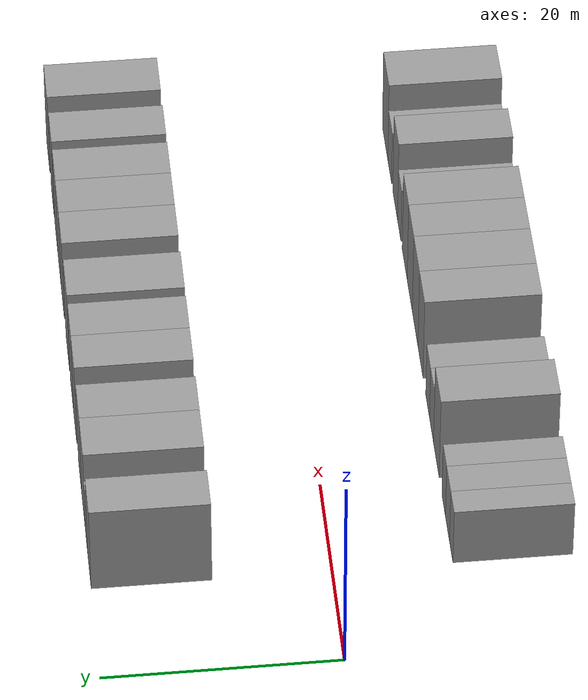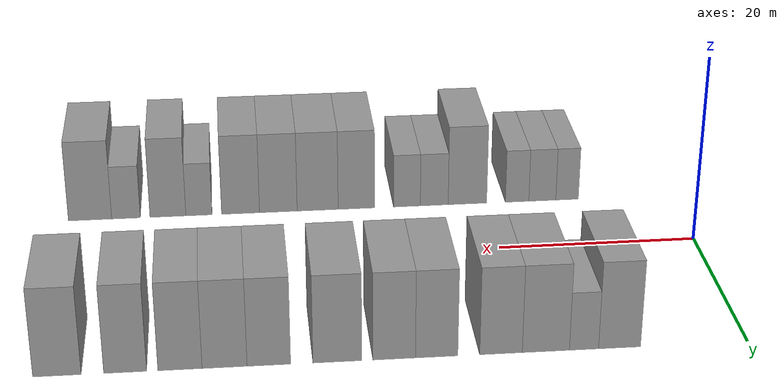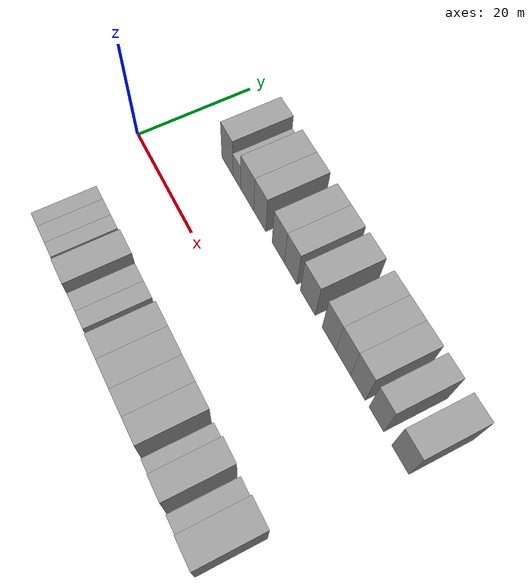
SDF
<sdf version="1.6">
 <world name="default">
  <model name="building_1">
   <static>1</static>
   <pose>11.9510 15.0000 0 0.000000 0.000000 1.570796</pose>
   <link name="link">
    <pose>0 0 4.50 0 0 0</pose>
    <collision name="collision"><geometry><box><size>10.0000 3.9020 9.0000</size></box></geometry></collision>
    <visual name="visual">
     <cast_shadows>0</cast_shadows>
     <geometry><box><size>10.0000 3.9020 9.0000</size></box></geometry>
     <material>
      <script>
       <uri>model://grey_wall/materials/scripts</uri>
       <uri>model://grey_wall/materials/textures</uri>
       <name>vrc/grey_wall</name>
      </script>
     </material>
    </visual>
   </link>
  </model>
  <model name="building_2">
   <static>1</static>
   <pose>15.2485 15.0000 0 0.000000 0.000000 1.570796</pose>
   <link name="link">
    <pose>0 0 3.00 0 0 0</pose>
    <collision name="collision"><geometry><box><size>10.0000 2.6931 6.0000</size></box></geometry></collision>
    <visual name="visual">
     <cast_shadows>0</cast_shadows>
     <geometry><box><size>10.0000 2.6931 6.0000</size></box></geometry>
     <material>
      <script>
       <uri>model://grey_wall/materials/scripts</uri>
       <uri>model://grey_wall/materials/textures</uri>
       <name>vrc/grey_wall</name>
      </script>
     </material>
    </visual>
   </link>
  </model>
  <model name="building_3">
   <static>1</static>
   <pose>18.7668 15.0000 0 0.000000 0.000000 1.570796</pose>
   <link name="link">
    <pose>0 0 4.50 0 0 0</pose>
    <collision name="collision"><geometry><box><size>10.0000 4.3433 9.0000</size></box></geometry></collision>
    <visual name="visual">
     <cast_shadows>0</cast_shadows>
     <geometry><box><size>10.0000 4.3433 9.0000</size></box></geometry>
     <material>
      <script>
       <uri>model://grey_wall/materials/scripts</uri>
       <uri>model://grey_wall/materials/textures</uri>
       <name>vrc/grey_wall</name>
      </script>
     </material>
    </visual>
   </link>
  </model>
  <model name="building_4">
   <static>1</static>
   <pose>22.8934 15.0000 0 0.000000 0.000000 1.570796</pose>
   <link name="link">
    <pose>0 0 4.50 0 0 0</pose>
    <collision name="collision"><geometry><box><size>10.0000 3.9101 9.0000</size></box></geometry></collision>
    <visual name="visual">
     <cast_shadows>0</cast_shadows>
     <geometry><box><size>10.0000 3.9101 9.0000</size></box></geometry>
     <material>
      <script>
       <uri>model://grey_wall/materials/scripts</uri>
       <uri>model://grey_wall/materials/textures</uri>
       <name>vrc/grey_wall</name>
      </script>
     </material>
    </visual>
   </link>
  </model>
  <model name="building_5">
   <static>1</static>
   <pose>28.7797 15.0000 0 0.000000 0.000000 1.570796</pose>
   <link name="link">
    <pose>0 0 4.50 0 0 0</pose>
    <collision name="collision"><geometry><box><size>10.0000 3.8624 9.0000</size></box></geometry></collision>
    <visual name="visual">
     <cast_shadows>0</cast_shadows>
     <geometry><box><size>10.0000 3.8624 9.0000</size></box></geometry>
     <material>
      <script>
       <uri>model://grey_wall/materials/scripts</uri>
       <uri>model://grey_wall/materials/textures</uri>
       <name>vrc/grey_wall</name>
      </script>
     </material>
    </visual>
   </link>
  </model>
  <model name="building_6">
   <static>1</static>
   <pose>32.6472 15.0000 0 0.000000 0.000000 1.570796</pose>
   <link name="link">
    <pose>0 0 4.50 0 0 0</pose>
    <collision name="collision"><geometry><box><size>10.0000 3.8726 9.0000</size></box></geometry></collision>
    <visual name="visual">
     <cast_shadows>0</cast_shadows>
     <geometry><box><size>10.0000 3.8726 9.0000</size></box></geometry>
     <material>
      <script>
       <uri>model://grey_wall/materials/scripts</uri>
       <uri>model://grey_wall/materials/textures</uri>
       <name>vrc/grey_wall</name>
      </script>
     </material>
    </visual>
   </link>
  </model>
  <model name="building_7">
   <static>1</static>
   <pose>37.7968 15.0000 0 0.000000 0.000000 1.570796</pose>
   <link name="link">
    <pose>0 0 4.50 0 0 0</pose>
    <collision name="collision"><geometry><box><size>10.0000 4.4267 9.0000</size></box></geometry></collision>
    <visual name="visual">
     <cast_shadows>0</cast_shadows>
     <geometry><box><size>10.0000 4.4267 9.0000</size></box></geometry>
     <material>
      <script>
       <uri>model://grey_wall/materials/scripts</uri>
       <uri>model://grey_wall/materials/textures</uri>
       <name>vrc/grey_wall</name>
      </script>
     </material>
    </visual>
   </link>
  </model>
  <model name="building_8">
   <static>1</static>
   <pose>43.9708 15.0000 0 0.000000 0.000000 1.570796</pose>
   <link name="link">
    <pose>0 0 4.50 0 0 0</pose>
    <collision name="collision"><geometry><box><size>10.0000 3.9212 9.0000</size></box></geometry></collision>
    <visual name="visual">
     <cast_shadows>0</cast_shadows>
     <geometry><box><size>10.0000 3.9212 9.0000</size></box></geometry>
     <material>
      <script>
       <uri>model://grey_wall/materials/scripts</uri>
       <uri>model://grey_wall/materials/textures</uri>
       <name>vrc/grey_wall</name>
      </script>
     </material>
    </visual>
   </link>
  </model>
  <model name="building_9">
   <static>1</static>
   <pose>47.9427 15.0000 0 0.000000 0.000000 1.570796</pose>
   <link name="link">
    <pose>0 0 4.50 0 0 0</pose>
    <collision name="collision"><geometry><box><size>10.0000 4.0226 9.0000</size></box></geometry></collision>
    <visual name="visual">
     <cast_shadows>0</cast_shadows>
     <geometry><box><size>10.0000 4.0226 9.0000</size></box></geometry>
     <material>
      <script>
       <uri>model://grey_wall/materials/scripts</uri>
       <uri>model://grey_wall/materials/textures</uri>
       <name>vrc/grey_wall</name>
      </script>
     </material>
    </visual>
   </link>
  </model>
  <model name="building_10">
   <static>1</static>
   <pose>51.9227 15.0000 0 0.000000 0.000000 1.570796</pose>
   <link name="link">
    <pose>0 0 4.50 0 0 0</pose>
    <collision name="collision"><geometry><box><size>10.0000 3.9374 9.0000</size></box></geometry></collision>
    <visual name="visual">
     <cast_shadows>0</cast_shadows>
     <geometry><box><size>10.0000 3.9374 9.0000</size></box></geometry>
     <material>
      <script>
       <uri>model://grey_wall/materials/scripts</uri>
       <uri>model://grey_wall/materials/textures</uri>
       <name>vrc/grey_wall</name>
      </script>
     </material>
    </visual>
   </link>
  </model>
  <model name="building_11">
   <static>1</static>
   <pose>56.7916 15.0000 0 0.000000 0.000000 1.570796</pose>
   <link name="link">
    <pose>0 0 4.50 0 0 0</pose>
    <collision name="collision"><geometry><box><size>10.0000 3.8004 9.0000</size></box></geometry></collision>
    <visual name="visual">
     <cast_shadows>0</cast_shadows>
     <geometry><box><size>10.0000 3.8004 9.0000</size></box></geometry>
     <material>
      <script>
       <uri>model://grey_wall/materials/scripts</uri>
       <uri>model://grey_wall/materials/textures</uri>
       <name>vrc/grey_wall</name>
      </script>
     </material>
    </visual>
   </link>
  </model>
  <model name="building_12">
   <static>1</static>
   <pose>62.8235 15.0000 0 0.000000 0.000000 1.570796</pose>
   <link name="link">
    <pose>0 0 4.50 0 0 0</pose>
    <collision name="collision"><geometry><box><size>10.0000 4.2633 9.0000</size></box></geometry></collision>
    <visual name="visual">
     <cast_shadows>0</cast_shadows>
     <geometry><box><size>10.0000 4.2633 9.0000</size></box></geometry>
     <material>
      <script>
       <uri>model://grey_wall/materials/scripts</uri>
       <uri>model://grey_wall/materials/textures</uri>
       <name>vrc/grey_wall</name>
      </script>
     </material>
    </visual>
   </link>
  </model>
  <model name="building_54">
   <static>1</static>
   <pose>11.2171 -15.0000 0 0.000000 0.000000 1.570796</pose>
   <link name="link">
    <pose>0 0 3.00 0 0 0</pose>
    <collision name="collision"><geometry><box><size>10.0000 2.4342 6.0000</size></box></geometry></collision>
    <visual name="visual">
     <cast_shadows>0</cast_shadows>
     <geometry><box><size>10.0000 2.4342 6.0000</size></box></geometry>
     <material>
      <script>
       <uri>model://grey_wall/materials/scripts</uri>
       <uri>model://grey_wall/materials/textures</uri>
       <name>vrc/grey_wall</name>
      </script>
     </material>
    </visual>
   </link>
  </model>
  <model name="building_55">
   <static>1</static>
   <pose>13.8826 -15.0000 0 0.000000 0.000000 1.570796</pose>
   <link name="link">
    <pose>0 0 3.00 0 0 0</pose>
    <collision name="collision"><geometry><box><size>10.0000 2.8969 6.0000</size></box></geometry></collision>
    <visual name="visual">
     <cast_shadows>0</cast_shadows>
     <geometry><box><size>10.0000 2.8969 6.0000</size></box></geometry>
     <material>
      <script>
       <uri>model://grey_wall/materials/scripts</uri>
       <uri>model://grey_wall/materials/textures</uri>
       <name>vrc/grey_wall</name>
      </script>
     </material>
    </visual>
   </link>
  </model>
  <model name="building_56">
   <static>1</static>
   <pose>16.5893 -15.0000 0 0.000000 0.000000 1.570796</pose>
   <link name="link">
    <pose>0 0 3.00 0 0 0</pose>
    <collision name="collision"><geometry><box><size>10.0000 2.5164 6.0000</size></box></geometry></collision>
    <visual name="visual">
     <cast_shadows>0</cast_shadows>
     <geometry><box><size>10.0000 2.5164 6.0000</size></box></geometry>
     <material>
      <script>
       <uri>model://grey_wall/materials/scripts</uri>
       <uri>model://grey_wall/materials/textures</uri>
       <name>vrc/grey_wall</name>
      </script>
     </material>
    </visual>
   </link>
  </model>
  <model name="building_57">
   <static>1</static>
   <pose>21.9039 -15.0000 0 0.000000 0.000000 1.570796</pose>
   <link name="link">
    <pose>0 0 4.50 0 0 0</pose>
    <collision name="collision"><geometry><box><size>10.0000 4.1128 9.0000</size></box></geometry></collision>
    <visual name="visual">
     <cast_shadows>0</cast_shadows>
     <geometry><box><size>10.0000 4.1128 9.0000</size></box></geometry>
     <material>
      <script>
       <uri>model://grey_wall/materials/scripts</uri>
       <uri>model://grey_wall/materials/textures</uri>
       <name>vrc/grey_wall</name>
      </script>
     </material>
    </visual>
   </link>
  </model>
  <model name="building_58">
   <static>1</static>
   <pose>25.4424 -15.0000 0 0.000000 0.000000 1.570796</pose>
   <link name="link">
    <pose>0 0 3.00 0 0 0</pose>
    <collision name="collision"><geometry><box><size>10.0000 2.9643 6.0000</size></box></geometry></collision>
    <visual name="visual">
     <cast_shadows>0</cast_shadows>
     <geometry><box><size>10.0000 2.9643 6.0000</size></box></geometry>
     <material>
      <script>
       <uri>model://grey_wall/materials/scripts</uri>
       <uri>model://grey_wall/materials/textures</uri>
       <name>vrc/grey_wall</name>
      </script>
     </material>
    </visual>
   </link>
  </model>
  <model name="building_59">
   <static>1</static>
   <pose>28.3462 -15.0000 0 0.000000 0.000000 1.570796</pose>
   <link name="link">
    <pose>0 0 3.00 0 0 0</pose>
    <collision name="collision"><geometry><box><size>10.0000 2.8432 6.0000</size></box></geometry></collision>
    <visual name="visual">
     <cast_shadows>0</cast_shadows>
     <geometry><box><size>10.0000 2.8432 6.0000</size></box></geometry>
     <material>
      <script>
       <uri>model://grey_wall/materials/scripts</uri>
       <uri>model://grey_wall/materials/textures</uri>
       <name>vrc/grey_wall</name>
      </script>
     </material>
    </visual>
   </link>
  </model>
  <model name="building_60">
   <static>1</static>
   <pose>33.6958 -15.0000 0 0.000000 0.000000 1.570796</pose>
   <link name="link">
    <pose>0 0 4.50 0 0 0</pose>
    <collision name="collision"><geometry><box><size>10.0000 3.8559 9.0000</size></box></geometry></collision>
    <visual name="visual">
     <cast_shadows>0</cast_shadows>
     <geometry><box><size>10.0000 3.8559 9.0000</size></box></geometry>
     <material>
      <script>
       <uri>model://grey_wall/materials/scripts</uri>
       <uri>model://grey_wall/materials/textures</uri>
       <name>vrc/grey_wall</name>
      </script>
     </material>
    </visual>
   </link>
  </model>
  <model name="building_61">
   <static>1</static>
   <pose>37.7832 -15.0000 0 0.000000 0.000000 1.570796</pose>
   <link name="link">
    <pose>0 0 4.50 0 0 0</pose>
    <collision name="collision"><geometry><box><size>10.0000 4.3190 9.0000</size></box></geometry></collision>
    <visual name="visual">
     <cast_shadows>0</cast_shadows>
     <geometry><box><size>10.0000 4.3190 9.0000</size></box></geometry>
     <material>
      <script>
       <uri>model://grey_wall/materials/scripts</uri>
       <uri>model://grey_wall/materials/textures</uri>
       <name>vrc/grey_wall</name>
      </script>
     </material>
    </visual>
   </link>
  </model>
  <model name="building_62">
   <static>1</static>
   <pose>41.9156 -15.0000 0 0.000000 0.000000 1.570796</pose>
   <link name="link">
    <pose>0 0 4.50 0 0 0</pose>
    <collision name="collision"><geometry><box><size>10.0000 3.9457 9.0000</size></box></geometry></collision>
    <visual name="visual">
     <cast_shadows>0</cast_shadows>
     <geometry><box><size>10.0000 3.9457 9.0000</size></box></geometry>
     <material>
      <script>
       <uri>model://grey_wall/materials/scripts</uri>
       <uri>model://grey_wall/materials/textures</uri>
       <name>vrc/grey_wall</name>
      </script>
     </material>
    </visual>
   </link>
  </model>
  <model name="building_63">
   <static>1</static>
   <pose>45.8698 -15.0000 0 0.000000 0.000000 1.570796</pose>
   <link name="link">
    <pose>0 0 4.50 0 0 0</pose>
    <collision name="collision"><geometry><box><size>10.0000 3.9627 9.0000</size></box></geometry></collision>
    <visual name="visual">
     <cast_shadows>0</cast_shadows>
     <geometry><box><size>10.0000 3.9627 9.0000</size></box></geometry>
     <material>
      <script>
       <uri>model://grey_wall/materials/scripts</uri>
       <uri>model://grey_wall/materials/textures</uri>
       <name>vrc/grey_wall</name>
      </script>
     </material>
    </visual>
   </link>
  </model>
  <model name="building_64">
   <static>1</static>
   <pose>50.2139 -15.0000 0 0.000000 0.000000 1.570796</pose>
   <link name="link">
    <pose>0 0 3.00 0 0 0</pose>
    <collision name="collision"><geometry><box><size>10.0000 2.7255 6.0000</size></box></geometry></collision>
    <visual name="visual">
     <cast_shadows>0</cast_shadows>
     <geometry><box><size>10.0000 2.7255 6.0000</size></box></geometry>
     <material>
      <script>
       <uri>model://grey_wall/materials/scripts</uri>
       <uri>model://grey_wall/materials/textures</uri>
       <name>vrc/grey_wall</name>
      </script>
     </material>
    </visual>
   </link>
  </model>
  <model name="building_65">
   <static>1</static>
   <pose>53.4395 -15.0000 0 0.000000 0.000000 1.570796</pose>
   <link name="link">
    <pose>0 0 4.50 0 0 0</pose>
    <collision name="collision"><geometry><box><size>10.0000 3.7256 9.0000</size></box></geometry></collision>
    <visual name="visual">
     <cast_shadows>0</cast_shadows>
     <geometry><box><size>10.0000 3.7256 9.0000</size></box></geometry>
     <material>
      <script>
       <uri>model://grey_wall/materials/scripts</uri>
       <uri>model://grey_wall/materials/textures</uri>
       <name>vrc/grey_wall</name>
      </script>
     </material>
    </visual>
   </link>
  </model>
  <model name="building_66">
   <static>1</static>
   <pose>57.7850 -15.0000 0 0.000000 0.000000 1.570796</pose>
   <link name="link">
    <pose>0 0 3.00 0 0 0</pose>
    <collision name="collision"><geometry><box><size>10.0000 2.9654 6.0000</size></box></geometry></collision>
    <visual name="visual">
     <cast_shadows>0</cast_shadows>
     <geometry><box><size>10.0000 2.9654 6.0000</size></box></geometry>
     <material>
      <script>
       <uri>model://grey_wall/materials/scripts</uri>
       <uri>model://grey_wall/materials/textures</uri>
       <name>vrc/grey_wall</name>
      </script>
     </material>
    </visual>
   </link>
  </model>
  <model name="building_67">
   <static>1</static>
   <pose>61.4964 -15.0000 0 0.000000 0.000000 1.570796</pose>
   <link name="link">
    <pose>0 0 4.50 0 0 0</pose>
    <collision name="collision"><geometry><box><size>10.0000 4.4574 9.0000</size></box></geometry></collision>
    <visual name="visual">
     <cast_shadows>0</cast_shadows>
     <geometry><box><size>10.0000 4.4574 9.0000</size></box></geometry>
     <material>
      <script>
       <uri>model://grey_wall/materials/scripts</uri>
       <uri>model://grey_wall/materials/textures</uri>
       <name>vrc/grey_wall</name>
      </script>
     </material>
    </visual>
   </link>
  </model>
 </world>
</sdf>
